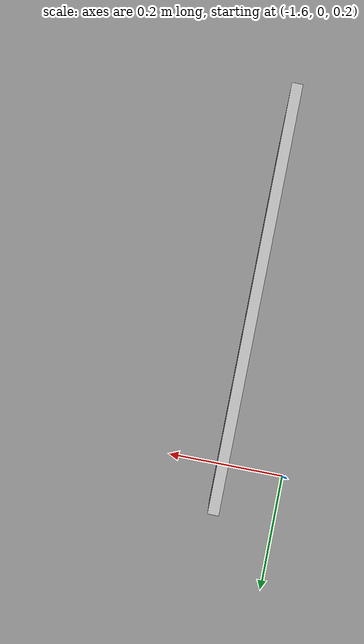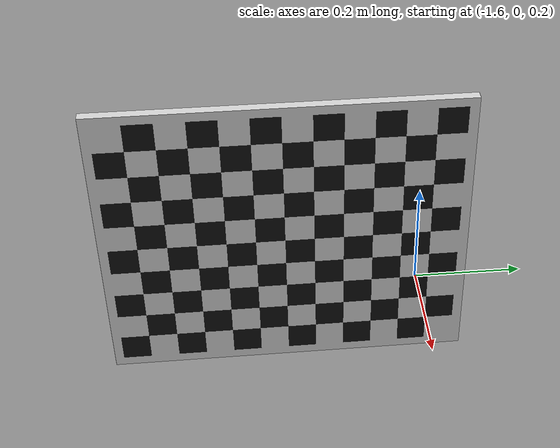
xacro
<?xml version="1.0"?>
<robot name="calibration_pattern" xmlns:xacro="http://www.ros.org/wiki/xacro">

	<material name="black">
		<color rgba="0 0 0 1.0"/>
	</material>
	<material name="white">
		<color rgba="1 1 1 1.0"/>
	</material>

	<!-- Base -->
	<link name="world"/>

	<joint name="chess_base" type="fixed">
		<parent link="world"/>
		<origin xyz="-1.5 0 0.2" rpy=" 3.14159 -1.5709 0"/>
		<child link="chess"/>
	</joint>
	<link name="chess">
		<visual>
			<origin xyz="0 0 0" rpy="0 0 0"/>
			<geometry>
	            <mesh filename="package://kinect_gazebo/meshes/chess_9x11_50x50.dae"/>
			</geometry>
		</visual>
		<inertial>
			<origin xyz="0 0 0" rpy="0 0 0"/>
			<mass value="0.1"/>
			<inertia
				ixx="0" ixy="0.0" ixz="0.0"
				iyy="0" iyz="0.0"
				izz="0"/>
		</inertial>
	</link>
</robot>
